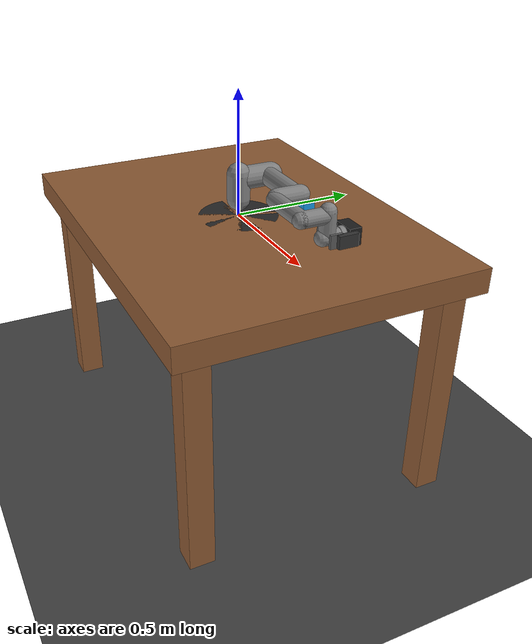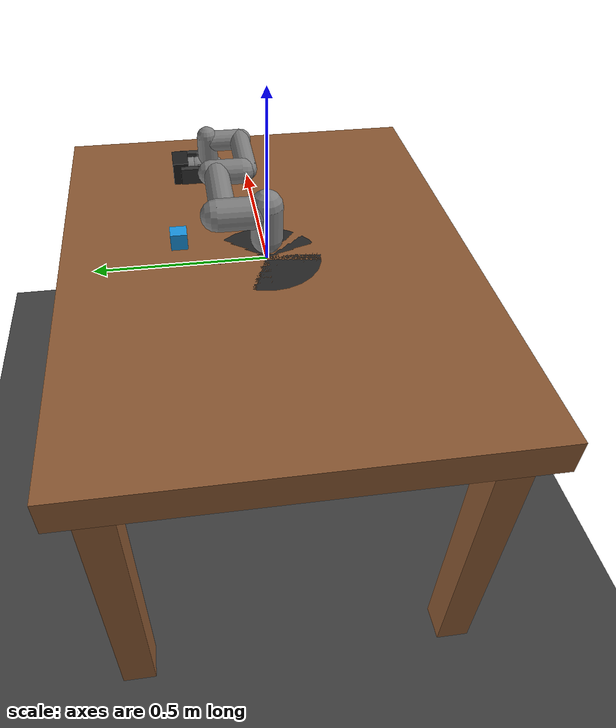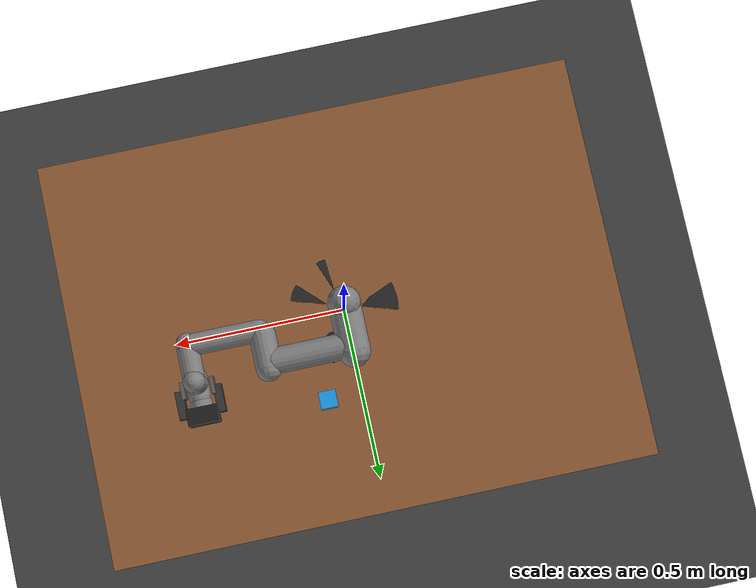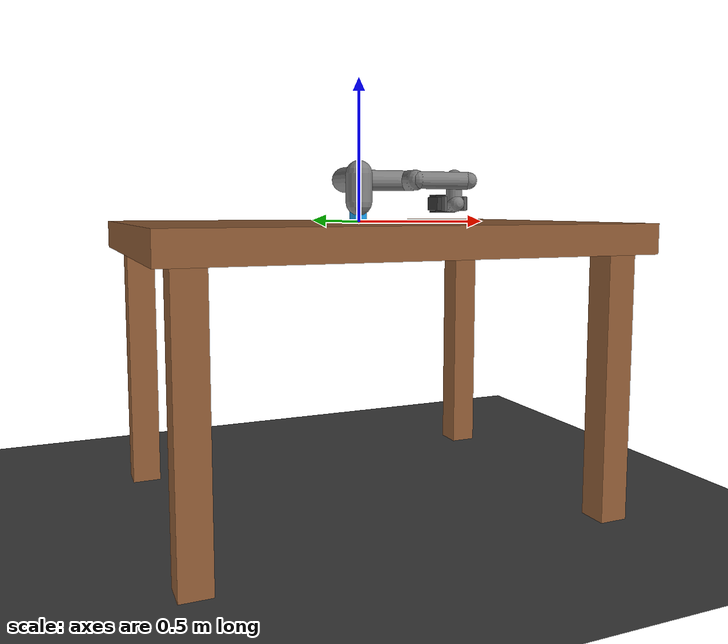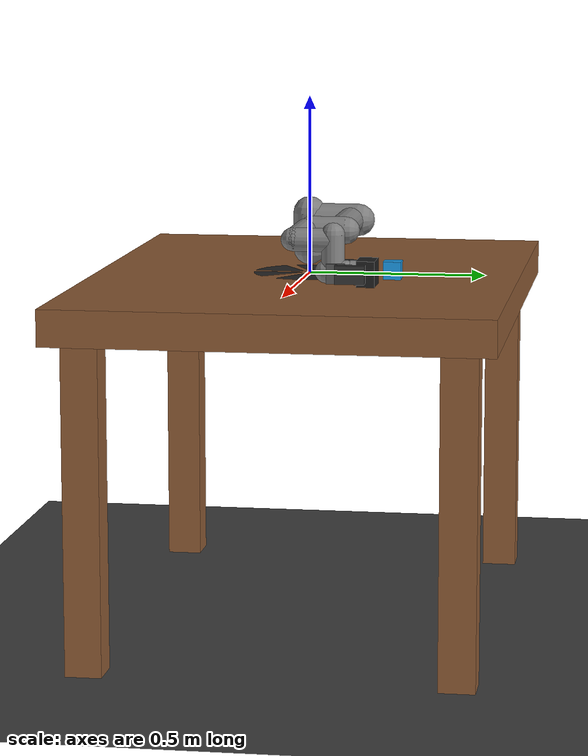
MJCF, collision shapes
<mujoco model="ur3e">

  <compiler angle="radian" meshdir="assets" autolimits="true"/>

  <option integrator="implicitfast"/>

  <default>
    <default class="ur3e">

      <material specular="0.5" shininess="0.25"/>

      <joint axis="0 1 0"
             range="-6.28319 6.28319"
             armature="0.1"/>

      <general gaintype="fixed"
               biastype="affine"
               ctrlrange="-6.2831 6.2831"/>

      <default class="size2">
        <general gainprm="1000"
                 biasprm="0 -1000 -200"
                 forcerange="-56 56"/>
      </default>

      <default class="size1">
        <default class="size1_limited">

          <joint range="-3.14159 3.14159"/>

          <general gainprm="500"
                   biasprm="0 -500 -100"
                   ctrlrange="-3.14159 3.14159"
                   forcerange="-28 28"/>

        </default>
      </default>

      <default class="size0">
        <general gainprm="200"
                 biasprm="0 -200 -40"
                 forcerange="-12 12"/>
      </default>

      <default class="visual">
        <geom type="mesh"
              contype="0"
              conaffinity="0"
              group="2"/>
      </default>

      <default class="collision">
        <geom type="capsule"
              group="3"/>

        <default class="eef_collision">
          <geom type="cylinder"/>
        </default>
      </default>

      <site size="0.001"
            rgba="0.5 0.5 0.5 0.3"
            group="4"/>

    </default>
  </default>

  <asset>

    <material class="ur3e"
              name="black"
              rgba="0.033 0.033 0.033 1"/>

    <material class="ur3e"
              name="jointgray"
              rgba="0.278 0.278 0.278 1"/>

    <material class="ur3e"
              name="linkgray"
              rgba="0.82 0.82 0.82 1"/>

    <material class="ur3e"
              name="urblue"
              rgba="0.49 0.678 0.8 1"/>

    <mesh file="base_0.obj"/>
    <mesh file="base_1.obj"/>

    <mesh file="shoulder_0.obj"/>
    <mesh file="shoulder_1.obj"/>
    <mesh file="shoulder_2.obj"/>

    <mesh file="upperarm_0.obj"/>
    <mesh file="upperarm_1.obj"/>
    <mesh file="upperarm_2.obj"/>
    <mesh file="upperarm_3.obj"/>

    <mesh file="forearm_0.obj"/>
    <mesh file="forearm_1.obj"/>
    <mesh file="forearm_2.obj"/>
    <mesh file="forearm_3.obj"/>

    <mesh file="wrist1_0.obj"/>
    <mesh file="wrist1_1.obj"/>
    <mesh file="wrist1_2.obj"/>

    <mesh file="wrist2_0.obj"/>
    <mesh file="wrist2_1.obj"/>
    <mesh file="wrist2_2.obj"/>

    <mesh file="wrist3.obj"/>

  </asset>

  <worldbody>

    <!-- FLOOR -->

    <geom name="floor"
          type="plane"
          size="5 5 0.1"
          pos="0 0 -1"
          rgba="0.25 0.25 0.25 1"/>

<!-- SMALL CUBE -->
<body name="cube" pos="0.10 0.25 0.025">
  <freejoint name="cube_freejoint"/>

  <geom name="cube_geom"
        type="box"
        size="0.025 0.025 0.025"
        rgba="0.1 0.6 0.9 1"
        mass="0.10"
        friction="2.0 0.5 0.05"/>

  <site name="cube_target"
        pos="0 0 0"
        size="0.008"
        rgba="1 1 0 1"/>
</body>

    <!-- TABLE -->

    <body name="table">

      <geom name="table_top"
            type="box"
            size="0.8 0.6 0.05"
            pos="0 0 -0.05"
            rgba="0.55 0.35 0.20 1"/>

      <geom name="table_leg_1"
            type="box"
            size="0.05 0.05 0.45"
            pos="-0.7 -0.5 -0.55"
            rgba="0.55 0.35 0.20 1"/>

      <geom name="table_leg_2"
            type="box"
            size="0.05 0.05 0.45"
            pos="0.7 -0.5 -0.55"
            rgba="0.55 0.35 0.20 1"/>

      <geom name="table_leg_3"
            type="box"
            size="0.05 0.05 0.45"
            pos="-0.7 0.5 -0.55"
            rgba="0.55 0.35 0.20 1"/>

      <geom name="table_leg_4"
            type="box"
            size="0.05 0.05 0.45"
            pos="0.7 0.5 -0.55"
            rgba="0.55 0.35 0.20 1"/>

      <!-- Existing robot mounting plate -->
      <geom name="robot_mounting_plate"
            type="cylinder"
            size="0.16 0.025"
            pos="0 0 -0.025"
            rgba="0.15 0.15 0.15 1"/>

    </body>

    <!-- LIGHT -->

    <light name="spotlight"
           mode="targetbodycom"
           target="wrist_3_link"
           pos="0 -1 2"/>

    <!-- Fixed external RGB observation camera for the optional VLA pipeline.
         It looks diagonally across the table at the robot workspace. -->
    <camera name="vla_camera"
            pos="0.75 -0.85 0.65"
            xyaxes="0.786 0.618 0 -0.296 0.377 0.878"
            fovy="55"/>

    <!-- UR3e -->

    <body name="base"
          childclass="ur3e">

      <inertial mass="2"
                pos="0 0 0"
                diaginertia="0.0030532 0.0030532 0.005625"/>

      <geom mesh="base_0"
            material="jointgray"
            class="visual"/>

      <geom mesh="base_1"
            material="black"
            class="visual"/>

      <!-- Shoulder -->
      <body name="shoulder_link"
            pos="0 0 0.152">

        <inertial mass="2"
                  pos="0 0 0"
                  diaginertia="0.00809316 0.00809316 0.005625"/>

        <joint name="shoulder_pan_joint"
               class="size2"
               axis="0 0 1"/>

        <geom mesh="shoulder_0"
              material="urblue"
              class="visual"/>

        <geom mesh="shoulder_1"
              material="black"
              class="visual"/>

        <geom mesh="shoulder_2"
              material="jointgray"
              class="visual"/>

        <geom class="collision"
              size="0.047 0.05"
              pos="0 0 -0.032"/>

        <!-- Upper arm -->
        <body name="upper_arm_link"
              pos="0 0.12 0"
              quat="1 0 1 0">

          <inertial mass="3.42"
                    pos="0 0 0.122"
                    diaginertia="0.0217285 0.0217285 0.00961875"/>

          <joint name="shoulder_lift_joint"
                 class="size2"/>

          <geom mesh="upperarm_0"
                material="black"
                class="visual"/>

          <geom mesh="upperarm_1"
                material="urblue"
                class="visual"/>

          <geom mesh="upperarm_2"
                material="jointgray"
                class="visual"/>

          <geom mesh="upperarm_3"
                material="linkgray"
                class="visual"/>

          <geom class="collision"
                size="0.046 0.06"
                pos="0 -0.04 0"
                quat="1 1 0 0"/>

          <geom class="collision"
                size="0.038 0.11"
                pos="0 0 0.12"/>

          <!-- Forearm -->
          <body name="forearm_link"
                pos="0 -0.093 0.244">

            <inertial mass="1.26"
                      pos="0 0 0.10625"
                      diaginertia="0.00654457 0.00654457 0.00354375"/>

            <joint name="elbow_joint"
                   class="size1_limited"/>

            <geom mesh="forearm_0"
                  material="urblue"
                  class="visual"/>

            <geom mesh="forearm_1"
                  material="linkgray"
                  class="visual"/>

            <geom mesh="forearm_2"
                  material="black"
                  class="visual"/>

            <geom mesh="forearm_3"
                  material="jointgray"
                  class="visual"/>

            <geom class="collision"
                  size="0.038 0.048"
                  pos="0 0.062 0"
                  quat="1 1 0 0"/>

            <geom class="collision"
                  size="0.032 0.103"
                  pos="0 0 0.11"/>

            <!-- Wrist 1 -->
            <body name="wrist_1_link"
                  pos="0.0005 0 0.2125"
                  quat="1 0 1 0">

              <inertial mass="0.8"
                        pos="0 0.104 0"
                        diaginertia="0.00225 0.002085 0.002085"/>

              <joint name="wrist_1_joint"
                     class="size0"/>

              <geom mesh="wrist1_0"
                    material="jointgray"
                    class="visual"/>

              <geom mesh="wrist1_1"
                    material="urblue"
                    class="visual"/>

              <geom mesh="wrist1_2"
                    material="black"
                    class="visual"/>

              <geom class="collision"
                    size="0.032 0.05"
                    pos="0 0.045 0"
                    quat="1 1 0 0"/>

              <!-- Wrist 2 -->
              <body name="wrist_2_link"
                    pos="0 0.104 0">

                <inertial mass="0.8"
                          pos="0 0 0.085"
                          diaginertia="0.00225 0.002085 0.002085"/>

                <joint name="wrist_2_joint"
                       axis="0 0 1"/>

                <geom mesh="wrist2_0"
                      material="jointgray"
                      class="visual"/>

                <geom mesh="wrist2_1"
                      material="black"
                      class="visual"/>

                <geom mesh="wrist2_2"
                      material="urblue"
                      class="visual"/>

                <geom class="collision"
                      size="0.032 0.05"
                      pos="0 0 0.035"
                      contype="0"
                      conaffinity="0"/>

                <geom class="collision"
                      size="0.032 0.027"
                      pos="0 0.01 0.085"
                      quat="1 1 0 0"
                      contype="0"
                      conaffinity="0"/>

                <!-- Wrist 3 -->
                <body name="wrist_3_link"
                      pos="0 0 0.085">

                  <inertial mass="0.35"
                            pos="0 0.0715 0"
                            quat="1 0 0 1"
                            diaginertia="0.0001792 0.000136267 0.000136267"/>

                  <joint name="wrist_3_joint"/>

                  <geom mesh="wrist3"
                        material="linkgray"
                        class="visual"/>

                  <geom class="eef_collision"
                        size="0.032 0.023"
                        pos="0 0.07 0"
                        quat="1 1 0 0"/>

                  <!-- EXISTING ATTACHMENT SITE -->

                  <site name="attachment_site"
                        pos="0 0.09215 0"
                        quat="-1 1 0 0"/>

                  <!-- TWO-FINGER GRIPPER -->

                  <!-- Gripper palm -->
                  <body name="gripper_base"
                        pos="0 0.09215 0"
                        quat="-1 1 0 0">

                    <geom name="gripper_palm"
                          type="box"
                          size="0.045 0.035 0.025"
                          pos="0 0 0"
                          rgba="0.12 0.12 0.12 1"
                          mass="0.15"/>

                    <!-- Left finger -->
                    <body name="left_finger"
                          pos="-0.055 0 0">

                      <joint name="left_finger_joint"
                             type="slide"
                             axis="1 0 0"
                             range="0 0.045"
                             damping="2"/>

                      <geom name="left_finger"
                            type="box"
                            size="0.012 0.025 0.040"
                            pos="0 0 -0.040"
                            rgba="0.2 0.2 0.2 1"
                            friction="1.5 0.5 0.05"
                            mass="0.08"/>

                      <geom name="left_finger_pad"
                            type="box"
                            size="0.006 0.027 0.025"
                            pos="0.012 0 -0.080"
                            rgba="0.35 0.35 0.35 1"
                            friction="2 0.5 0.05"
                            mass="0.03"/>

                    </body>

                    <!-- Right finger -->
                    <body name="right_finger"
                          pos="0.055 0 0">

                      <joint name="right_finger_joint"
                             type="slide"
                             axis="-1 0 0"
                             range="0 0.045"
                             damping="2"/>

                      <geom name="right_finger"
                            type="box"
                            size="0.012 0.025 0.040"
                            pos="0 0 -0.040"
                            rgba="0.2 0.2 0.2 1"
                            friction="1.5 0.5 0.05"
                            mass="0.08"/>

                      <geom name="right_finger_pad"
                            type="box"
                            size="0.006 0.027 0.025"
                            pos="-0.012 0 -0.080"
                            rgba="0.35 0.35 0.35 1"
                            friction="2 0.5 0.05"
                            mass="0.03"/>

                    </body>

                  </body>

                </body>
              </body>
            </body>
          </body>
        </body>
      </body>
    </body>

  </worldbody>

  <!-- UR3e ACTUATORS -->

  <actuator>

    <general class="size2"
             name="shoulder_pan"
             joint="shoulder_pan_joint"/>

    <general class="size2"
             name="shoulder_lift"
             joint="shoulder_lift_joint"/>

    <general class="size1_limited"
             name="elbow"
             joint="elbow_joint"/>

    <general class="size0"
             name="wrist_1"
             joint="wrist_1_joint"/>

    <general class="size0"
             name="wrist_2"
             joint="wrist_2_joint"/>

    <general class="size0"
             name="wrist_3"
             joint="wrist_3_joint"/>

    <!-- Gripper finger actuators -->

    <position name="left_gripper"
              joint="left_finger_joint"
              kp="300"
              ctrlrange="0 0.045"/>

    <position name="right_gripper"
              joint="right_finger_joint"
              kp="300"
              ctrlrange="0 0.045"/>

  </actuator>

  <!-- HOME POSITION -->

  <keyframe>

    <key name="home"
          qpos="-1.5708 -1.5708 1.5708 -1.5708 -1.5708 0 0 0"
          ctrl="-1.5708 -1.5708 1.5708 -1.5708 -1.5708 0 0 0"/>

  </keyframe>

</mujoco>
